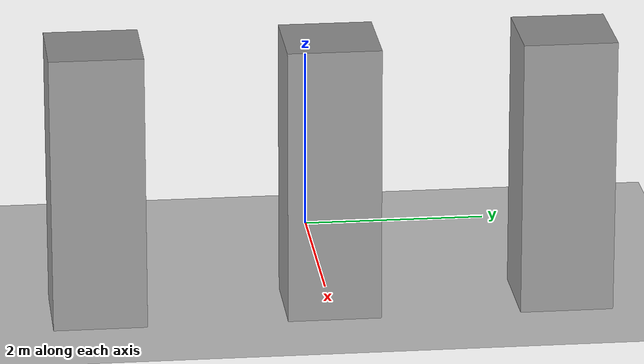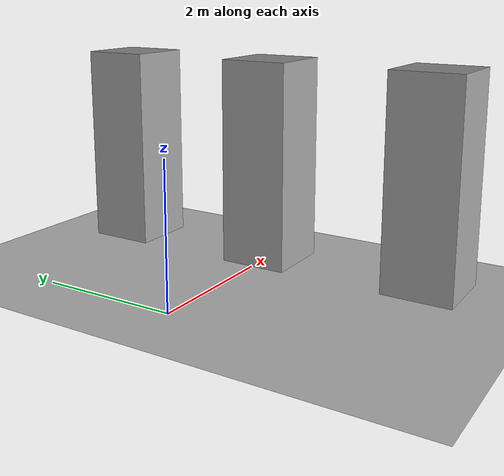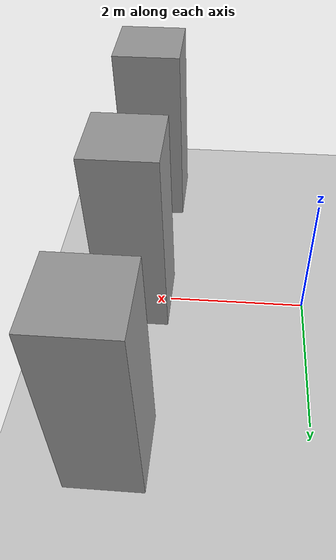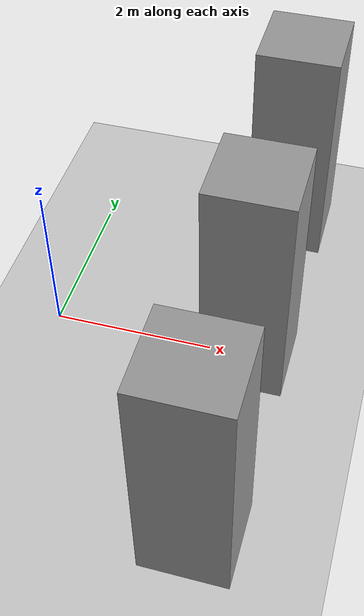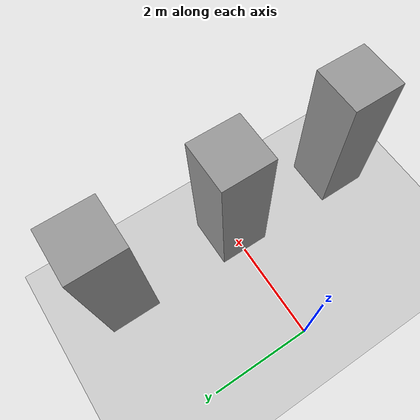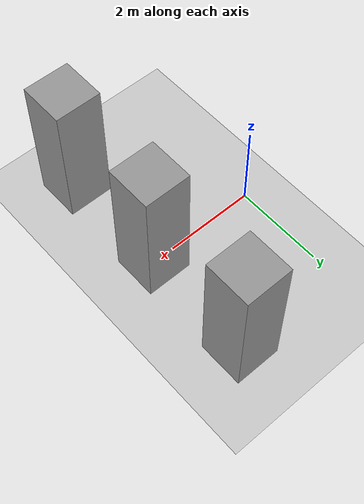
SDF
<?xml version="1.0" ?>
<sdf version="1.5">
  <world name="default">
    <!-- A global light source -->
    <include>
      <uri>model://sun</uri>
    </include>
    <!-- A ground plane -->
    <include>
      <uri>model://ground_plane</uri>
    </include>
    <!-- Asphalt plane -->
    <include>
      <uri>model://asphalt_plane</uri>
    </include>

    <physics name='default_physics' default='0' type='ode'>
      <gravity>0 0 -9.8066</gravity>
      <magnetic_field>6.0e-6 2.3e-5 -4.2e-5</magnetic_field>
      <max_step_size>0.004</max_step_size>
      <real_time_factor>1</real_time_factor>
      <real_time_update_rate>250</real_time_update_rate>
    </physics>

    <!-- Obstacles -->
    <model name='unit_box_0'>
      <pose frame=''>2.5 0.0 1.5 0 -0 0</pose>
      <static>1</static>
      <link name='link'>
        <collision name='collision'>
          <geometry>
            <box>
              <size>1 1 3</size>
            </box>
          </geometry>
        </collision>
        <visual name='visual'>
          <geometry>
            <box>
              <size>1 1 3</size>
            </box>
          </geometry>
          <material>
            <script>
              <name>Gazebo/Grey</name>
              <uri>file://media/materials/scripts/gazebo.material</uri>
            </script>
          </material>
        </visual>
      </link>
    </model>

    <model name='unit_box_1'>
      <pose frame=''>2.5 2.5 1.5 0 -0 0</pose>
      <static>1</static>
      <link name='link'>
        <collision name='collision'>
          <geometry>
            <box>
              <size>1 1 3</size>
            </box>
          </geometry>
        </collision>
        <visual name='visual'>
          <geometry>
            <box>
              <size>1 1 3</size>
            </box>
          </geometry>
          <material>
            <script>
              <name>Gazebo/Grey</name>
              <uri>file://media/materials/scripts/gazebo.material</uri>
            </script>
          </material>
        </visual>
      </link>
    </model>

      <model name='unit_box_2'>
      <pose frame=''>2.5 -2.5 1.5 0 -0 0</pose>
      <static>1</static>
      <link name='link'>
        <collision name='collision'>
          <geometry>
            <box>
              <size>1 1 3</size>
            </box>
          </geometry>
        </collision>
        <visual name='visual'>
          <geometry>
            <box>
              <size>1 1 3</size>
            </box>
          </geometry>
          <material>
            <script>
              <name>Gazebo/Grey</name>
              <uri>file://media/materials/scripts/gazebo.material</uri>
            </script>
          </material>
        </visual>
      </link>
    </model>

  </world>
</sdf>
